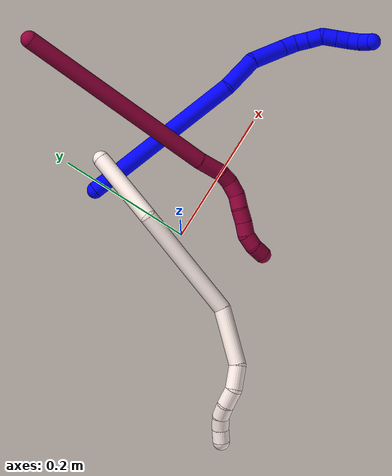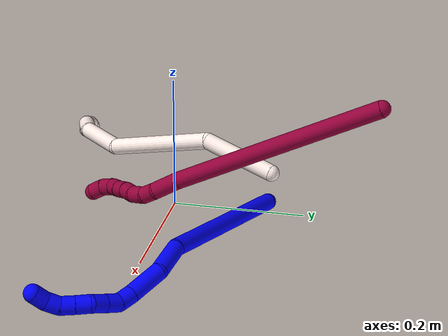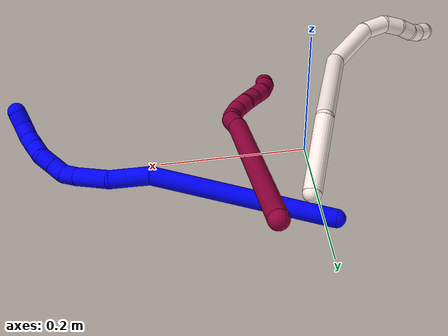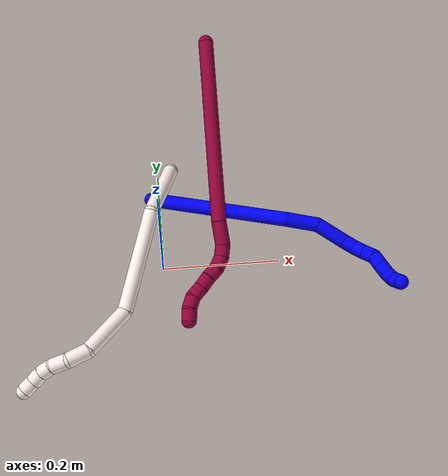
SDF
<sdf version="1.7">
 <world name="default">
  <model name="1">
   <static>0</static>
   <link name="1">
    <collision name="collision-cylinder-e_1_1_4">
     <pose>0.03472 -0.024136 0.116716 0.20392 0.283469 0.029197</pose>
     <geometry><cylinder><radius>0.0125</radius><length>0.248279</length></cylinder></geometry>
     <surface>
      <friction><ode><mu>1.16</mu><mu2>1.16</mu2><slip1>0</slip1><slip2>0</slip2></ode></friction>
      <contact><ode><kp>1e+06</kp><kd>1</kd><max_vel>0</max_vel><min_depth>0.001</min_depth></ode></contact>
     </surface>
    </collision>
    <visual name="visual-cylinder-e_1_1_4">
     <pose>0.03472 -0.024136 0.116716 0.20392 0.283469 0.029197</pose>
     <geometry><cylinder><radius>0.0125</radius><length>0.248279</length></cylinder></geometry>
     <material><ambient>0 0 1 1</ambient></material>
    </visual>
    <collision name="collision-cylinder-e_2_4_5">
     <pose>0.0783 -0.044589 0.259219 -0.141864 0.327826 -0.023502</pose>
     <geometry><cylinder><radius>0.0125</radius><length>0.055029</length></cylinder></geometry>
     <surface>
      <friction><ode><mu>1.16</mu><mu2>1.16</mu2><slip1>0</slip1><slip2>0</slip2></ode></friction>
      <contact><ode><kp>1e+06</kp><kd>1</kd><max_vel>0</max_vel><min_depth>0.001</min_depth></ode></contact>
     </surface>
    </collision>
    <visual name="visual-cylinder-e_2_4_5">
     <pose>0.0783 -0.044589 0.259219 -0.141864 0.327826 -0.023502</pose>
     <geometry><cylinder><radius>0.0125</radius><length>0.055029</length></cylinder></geometry>
     <material><ambient>0 0 1 1</ambient></material>
    </visual>
    <collision name="collision-cylinder-e_3_5_6">
     <pose>0.104396 -0.040665 0.304889 -0.01211 0.714198 -0.004518</pose>
     <geometry><cylinder><radius>0.0125</radius><length>0.05263</length></cylinder></geometry>
     <surface>
      <friction><ode><mu>1.16</mu><mu2>1.16</mu2><slip1>0</slip1><slip2>0</slip2></ode></friction>
      <contact><ode><kp>1e+06</kp><kd>1</kd><max_vel>0</max_vel><min_depth>0.001</min_depth></ode></contact>
     </surface>
    </collision>
    <visual name="visual-cylinder-e_3_5_6">
     <pose>0.104396 -0.040665 0.304889 -0.01211 0.714198 -0.004518</pose>
     <geometry><cylinder><radius>0.0125</radius><length>0.05263</length></cylinder></geometry>
     <material><ambient>0 0 1 1</ambient></material>
    </visual>
    <collision name="collision-cylinder-e_4_6_7">
     <pose>0.128542 -0.041268 0.333138 0.10044 0.687869 0.036001</pose>
     <geometry><cylinder><radius>0.0125</radius><length>0.021768</length></cylinder></geometry>
     <surface>
      <friction><ode><mu>1.16</mu><mu2>1.16</mu2><slip1>0</slip1><slip2>0</slip2></ode></friction>
      <contact><ode><kp>1e+06</kp><kd>1</kd><max_vel>0</max_vel><min_depth>0.001</min_depth></ode></contact>
     </surface>
    </collision>
    <visual name="visual-cylinder-e_4_6_7">
     <pose>0.128542 -0.041268 0.333138 0.10044 0.687869 0.036001</pose>
     <geometry><cylinder><radius>0.0125</radius><length>0.021768</length></cylinder></geometry>
     <material><ambient>0 0 1 1</ambient></material>
    </visual>
    <collision name="collision-cylinder-e_5_7_8">
     <pose>0.140443 -0.047749 0.348888 0.652082 0.492936 0.169715</pose>
     <geometry><cylinder><radius>0.0125</radius><length>0.021091</length></cylinder></geometry>
     <surface>
      <friction><ode><mu>1.16</mu><mu2>1.16</mu2><slip1>0</slip1><slip2>0</slip2></ode></friction>
      <contact><ode><kp>1e+06</kp><kd>1</kd><max_vel>0</max_vel><min_depth>0.001</min_depth></ode></contact>
     </surface>
    </collision>
    <visual name="visual-cylinder-e_5_7_8">
     <pose>0.140443 -0.047749 0.348888 0.652082 0.492936 0.169715</pose>
     <geometry><cylinder><radius>0.0125</radius><length>0.021091</length></cylinder></geometry>
     <material><ambient>0 0 1 1</ambient></material>
    </visual>
    <collision name="collision-cylinder-e_6_8_9">
     <pose>0.14983 -0.059086 0.363689 0.655253 0.439378 0.151493</pose>
     <geometry><cylinder><radius>0.0125</radius><length>0.020672</length></cylinder></geometry>
     <surface>
      <friction><ode><mu>1.16</mu><mu2>1.16</mu2><slip1>0</slip1><slip2>0</slip2></ode></friction>
      <contact><ode><kp>1e+06</kp><kd>1</kd><max_vel>0</max_vel><min_depth>0.001</min_depth></ode></contact>
     </surface>
    </collision>
    <visual name="visual-cylinder-e_6_8_9">
     <pose>0.14983 -0.059086 0.363689 0.655253 0.439378 0.151493</pose>
     <geometry><cylinder><radius>0.0125</radius><length>0.020672</length></cylinder></geometry>
     <material><ambient>0 0 1 1</ambient></material>
    </visual>
    <collision name="collision-cylinder-e_7_9_10">
     <pose>0.162066 -0.070131 0.375002 0.94096 0.870004 0.464138</pose>
     <geometry><cylinder><radius>0.0125</radius><length>0.020515</length></cylinder></geometry>
     <surface>
      <friction><ode><mu>1.16</mu><mu2>1.16</mu2><slip1>0</slip1><slip2>0</slip2></ode></friction>
      <contact><ode><kp>1e+06</kp><kd>1</kd><max_vel>0</max_vel><min_depth>0.001</min_depth></ode></contact>
     </surface>
    </collision>
    <visual name="visual-cylinder-e_7_9_10">
     <pose>0.162066 -0.070131 0.375002 0.94096 0.870004 0.464138</pose>
     <geometry><cylinder><radius>0.0125</radius><length>0.020515</length></cylinder></geometry>
     <material><ambient>0 0 1 1</ambient></material>
    </visual>
    <collision name="collision-cylinder-e_8_10_11">
     <pose>0.177335 -0.080966 0.382741 0.960041 0.836819 0.455003</pose>
     <geometry><cylinder><radius>0.0125</radius><length>0.020009</length></cylinder></geometry>
     <surface>
      <friction><ode><mu>1.16</mu><mu2>1.16</mu2><slip1>0</slip1><slip2>0</slip2></ode></friction>
      <contact><ode><kp>1e+06</kp><kd>1</kd><max_vel>0</max_vel><min_depth>0.001</min_depth></ode></contact>
     </surface>
    </collision>
    <visual name="visual-cylinder-e_8_10_11">
     <pose>0.177335 -0.080966 0.382741 0.960041 0.836819 0.455003</pose>
     <geometry><cylinder><radius>0.0125</radius><length>0.020009</length></cylinder></geometry>
     <material><ambient>0 0 1 1</ambient></material>
    </visual>
    <collision name="collision-cylinder-e_9_11_12">
     <pose>0.1892 -0.094601 0.390329 1.13983 0.459516 0.29756</pose>
     <geometry><cylinder><radius>0.0125</radius><length>0.020006</length></cylinder></geometry>
     <surface>
      <friction><ode><mu>1.16</mu><mu2>1.16</mu2><slip1>0</slip1><slip2>0</slip2></ode></friction>
      <contact><ode><kp>1e+06</kp><kd>1</kd><max_vel>0</max_vel><min_depth>0.001</min_depth></ode></contact>
     </surface>
    </collision>
    <visual name="visual-cylinder-e_9_11_12">
     <pose>0.1892 -0.094601 0.390329 1.13983 0.459516 0.29756</pose>
     <geometry><cylinder><radius>0.0125</radius><length>0.020006</length></cylinder></geometry>
     <material><ambient>0 0 1 1</ambient></material>
    </visual>
    <collision name="collision-cylinder-e_10_12_2">
     <pose>0.195199 -0.11165 0.398355 1.12262 0.156899 0.098777</pose>
     <geometry><cylinder><radius>0.0125</radius><length>0.020003</length></cylinder></geometry>
     <surface>
      <friction><ode><mu>1.16</mu><mu2>1.16</mu2><slip1>0</slip1><slip2>0</slip2></ode></friction>
      <contact><ode><kp>1e+06</kp><kd>1</kd><max_vel>0</max_vel><min_depth>0.001</min_depth></ode></contact>
     </surface>
    </collision>
    <visual name="visual-cylinder-e_10_12_2">
     <pose>0.195199 -0.11165 0.398355 1.12262 0.156899 0.098777</pose>
     <geometry><cylinder><radius>0.0125</radius><length>0.020003</length></cylinder></geometry>
     <material><ambient>0 0 1 1</ambient></material>
    </visual>
    <collision name="collision-sphere-2">
     <pose>0.196762 -0.120553 0.402635 0 -0 0</pose>
     <geometry><sphere><radius>0.0125</radius></sphere></geometry>
     <surface>
      <friction><ode><mu>1.16</mu><mu2>1.16</mu2><slip1>0</slip1><slip2>0</slip2></ode></friction>
      <contact><ode><kp>1e+06</kp><kd>1</kd><max_vel>0</max_vel><min_depth>0.001</min_depth></ode></contact>
     </surface>
    </collision>
    <visual name="visual-sphere-2">
     <pose>0.196762 -0.120553 0.402635 0 -0 0</pose>
     <geometry><sphere><radius>0.0125</radius></sphere></geometry>
     <material><ambient>0 0 1 1</ambient></material>
    </visual>
    <collision name="collision-sphere-12">
     <pose>0.193636 -0.102747 0.394074 0 -0 0</pose>
     <geometry><sphere><radius>0.0125</radius></sphere></geometry>
     <surface>
      <friction><ode><mu>1.16</mu><mu2>1.16</mu2><slip1>0</slip1><slip2>0</slip2></ode></friction>
      <contact><ode><kp>1e+06</kp><kd>1</kd><max_vel>0</max_vel><min_depth>0.001</min_depth></ode></contact>
     </surface>
    </collision>
    <visual name="visual-sphere-12">
     <pose>0.193636 -0.102747 0.394074 0 -0 0</pose>
     <geometry><sphere><radius>0.0125</radius></sphere></geometry>
     <material><ambient>0 0 1 1</ambient></material>
    </visual>
    <collision name="collision-sphere-11">
     <pose>0.184763 -0.086456 0.386584 0 -0 0</pose>
     <geometry><sphere><radius>0.0125</radius></sphere></geometry>
     <surface>
      <friction><ode><mu>1.16</mu><mu2>1.16</mu2><slip1>0</slip1><slip2>0</slip2></ode></friction>
      <contact><ode><kp>1e+06</kp><kd>1</kd><max_vel>0</max_vel><min_depth>0.001</min_depth></ode></contact>
     </surface>
    </collision>
    <visual name="visual-sphere-11">
     <pose>0.184763 -0.086456 0.386584 0 -0 0</pose>
     <geometry><sphere><radius>0.0125</radius></sphere></geometry>
     <material><ambient>0 0 1 1</ambient></material>
    </visual>
    <collision name="collision-sphere-10">
     <pose>0.169906 -0.075476 0.378898 0 -0 0</pose>
     <geometry><sphere><radius>0.0125</radius></sphere></geometry>
     <surface>
      <friction><ode><mu>1.16</mu><mu2>1.16</mu2><slip1>0</slip1><slip2>0</slip2></ode></friction>
      <contact><ode><kp>1e+06</kp><kd>1</kd><max_vel>0</max_vel><min_depth>0.001</min_depth></ode></contact>
     </surface>
    </collision>
    <visual name="visual-sphere-10">
     <pose>0.169906 -0.075476 0.378898 0 -0 0</pose>
     <geometry><sphere><radius>0.0125</radius></sphere></geometry>
     <material><ambient>0 0 1 1</ambient></material>
    </visual>
    <collision name="collision-sphere-9">
     <pose>0.154226 -0.064786 0.371106 0 -0 0</pose>
     <geometry><sphere><radius>0.0125</radius></sphere></geometry>
     <surface>
      <friction><ode><mu>1.16</mu><mu2>1.16</mu2><slip1>0</slip1><slip2>0</slip2></ode></friction>
      <contact><ode><kp>1e+06</kp><kd>1</kd><max_vel>0</max_vel><min_depth>0.001</min_depth></ode></contact>
     </surface>
    </collision>
    <visual name="visual-sphere-9">
     <pose>0.154226 -0.064786 0.371106 0 -0 0</pose>
     <geometry><sphere><radius>0.0125</radius></sphere></geometry>
     <material><ambient>0 0 1 1</ambient></material>
    </visual>
    <collision name="collision-sphere-4">
     <pose>0.069441 -0.048272 0.233431 0 -0 0</pose>
     <geometry><sphere><radius>0.0125</radius></sphere></geometry>
     <surface>
      <friction><ode><mu>1.16</mu><mu2>1.16</mu2><slip1>0</slip1><slip2>0</slip2></ode></friction>
      <contact><ode><kp>1e+06</kp><kd>1</kd><max_vel>0</max_vel><min_depth>0.001</min_depth></ode></contact>
     </surface>
    </collision>
    <visual name="visual-sphere-4">
     <pose>0.069441 -0.048272 0.233431 0 -0 0</pose>
     <geometry><sphere><radius>0.0125</radius></sphere></geometry>
     <material><ambient>0 0 1 1</ambient></material>
    </visual>
    <collision name="collision-sphere-1">
     <geometry><sphere><radius>0.0125</radius></sphere></geometry>
     <surface>
      <friction><ode><mu>1.16</mu><mu2>1.16</mu2><slip1>0</slip1><slip2>0</slip2></ode></friction>
      <contact><ode><kp>1e+06</kp><kd>1</kd><max_vel>0</max_vel><min_depth>0.001</min_depth></ode></contact>
     </surface>
    </collision>
    <visual name="visual-sphere-1">
     <geometry><sphere><radius>0.0125</radius></sphere></geometry>
     <material><ambient>0 0 1 1</ambient></material>
    </visual>
    <collision name="collision-sphere-8">
     <pose>0.145433 -0.053386 0.356272 0 -0 0</pose>
     <geometry><sphere><radius>0.0125</radius></sphere></geometry>
     <surface>
      <friction><ode><mu>1.16</mu><mu2>1.16</mu2><slip1>0</slip1><slip2>0</slip2></ode></friction>
      <contact><ode><kp>1e+06</kp><kd>1</kd><max_vel>0</max_vel><min_depth>0.001</min_depth></ode></contact>
     </surface>
    </collision>
    <visual name="visual-sphere-8">
     <pose>0.145433 -0.053386 0.356272 0 -0 0</pose>
     <geometry><sphere><radius>0.0125</radius></sphere></geometry>
     <material><ambient>0 0 1 1</ambient></material>
    </visual>
    <collision name="collision-sphere-5">
     <pose>0.087159 -0.040906 0.285006 0 -0 0</pose>
     <geometry><sphere><radius>0.0125</radius></sphere></geometry>
     <surface>
      <friction><ode><mu>1.16</mu><mu2>1.16</mu2><slip1>0</slip1><slip2>0</slip2></ode></friction>
      <contact><ode><kp>1e+06</kp><kd>1</kd><max_vel>0</max_vel><min_depth>0.001</min_depth></ode></contact>
     </surface>
    </collision>
    <visual name="visual-sphere-5">
     <pose>0.087159 -0.040906 0.285006 0 -0 0</pose>
     <geometry><sphere><radius>0.0125</radius></sphere></geometry>
     <material><ambient>0 0 1 1</ambient></material>
    </visual>
    <collision name="collision-sphere-6">
     <pose>0.121632 -0.040425 0.324772 0 -0 0</pose>
     <geometry><sphere><radius>0.0125</radius></sphere></geometry>
     <surface>
      <friction><ode><mu>1.16</mu><mu2>1.16</mu2><slip1>0</slip1><slip2>0</slip2></ode></friction>
      <contact><ode><kp>1e+06</kp><kd>1</kd><max_vel>0</max_vel><min_depth>0.001</min_depth></ode></contact>
     </surface>
    </collision>
    <visual name="visual-sphere-6">
     <pose>0.121632 -0.040425 0.324772 0 -0 0</pose>
     <geometry><sphere><radius>0.0125</radius></sphere></geometry>
     <material><ambient>0 0 1 1</ambient></material>
    </visual>
    <collision name="collision-sphere-7">
     <pose>0.135452 -0.042111 0.341504 0 -0 0</pose>
     <geometry><sphere><radius>0.0125</radius></sphere></geometry>
     <surface>
      <friction><ode><mu>1.16</mu><mu2>1.16</mu2><slip1>0</slip1><slip2>0</slip2></ode></friction>
      <contact><ode><kp>1e+06</kp><kd>1</kd><max_vel>0</max_vel><min_depth>0.001</min_depth></ode></contact>
     </surface>
    </collision>
    <visual name="visual-sphere-7">
     <pose>0.135452 -0.042111 0.341504 0 -0 0</pose>
     <geometry><sphere><radius>0.0125</radius></sphere></geometry>
     <material><ambient>0 0 1 1</ambient></material>
    </visual>
    <inertial>
     <pose>0.083687 -0.041796 0.22509 0 -0 0</pose>
     <mass>0.5</mass>
     <inertia>
      <ixx>0.001321</ixx>
      <ixy>0</ixy>
      <ixz>0</ixz>
      <iyy>0.001326</iyy>
      <iyz>0</iyz>
      <izz>-9.5e-05</izz>
     </inertia>
    </inertial>
   </link>
   <pose>-0.013252 0.142539 0.011487 -1.39127 0.647396 -1.46319</pose>
  </model>
  <model name="8">
   <static>0</static>
   <link name="8">
    <collision name="collision-cylinder-e_1_1_4">
     <pose>-0.014746 -0.154423 -0.032465 1.77801 -0.093178 -0.114761</pose>
     <geometry><cylinder><radius>0.0125</radius><length>0.316972</length></cylinder></geometry>
     <surface>
      <friction><ode><mu>1.16</mu><mu2>1.16</mu2><slip1>0</slip1><slip2>0</slip2></ode></friction>
      <contact><ode><kp>1e+06</kp><kd>1</kd><max_vel>0</max_vel><min_depth>0.001</min_depth></ode></contact>
     </surface>
    </collision>
    <visual name="visual-cylinder-e_1_1_4">
     <pose>-0.014746 -0.154423 -0.032465 1.77801 -0.093178 -0.114761</pose>
     <geometry><cylinder><radius>0.0125</radius><length>0.316972</length></cylinder></geometry>
     <material><ambient>0.584314 0 0.227451 1</ambient></material>
    </visual>
    <collision name="collision-cylinder-e_2_4_5">
     <pose>-0.032327 -0.327154 -0.070778 1.88 -0.146423 -0.200176</pose>
     <geometry><cylinder><radius>0.0125</radius><length>0.038856</length></cylinder></geometry>
     <surface>
      <friction><ode><mu>1.16</mu><mu2>1.16</mu2><slip1>0</slip1><slip2>0</slip2></ode></friction>
      <contact><ode><kp>1e+06</kp><kd>1</kd><max_vel>0</max_vel><min_depth>0.001</min_depth></ode></contact>
     </surface>
    </collision>
    <visual name="visual-cylinder-e_2_4_5">
     <pose>-0.032327 -0.327154 -0.070778 1.88 -0.146423 -0.200176</pose>
     <geometry><cylinder><radius>0.0125</radius><length>0.038856</length></cylinder></geometry>
     <material><ambient>0.584314 0 0.227451 1</ambient></material>
    </visual>
    <collision name="collision-cylinder-e_3_5_6">
     <pose>-0.036987 -0.355576 -0.076935 1.6012 -0.178497 -0.183978</pose>
     <geometry><cylinder><radius>0.0125</radius><length>0.020563</length></cylinder></geometry>
     <surface>
      <friction><ode><mu>1.16</mu><mu2>1.16</mu2><slip1>0</slip1><slip2>0</slip2></ode></friction>
      <contact><ode><kp>1e+06</kp><kd>1</kd><max_vel>0</max_vel><min_depth>0.001</min_depth></ode></contact>
     </surface>
    </collision>
    <visual name="visual-cylinder-e_3_5_6">
     <pose>-0.036987 -0.355576 -0.076935 1.6012 -0.178497 -0.183978</pose>
     <geometry><cylinder><radius>0.0125</radius><length>0.020563</length></cylinder></geometry>
     <material><ambient>0.584314 0 0.227451 1</ambient></material>
    </visual>
    <collision name="collision-cylinder-e_4_6_7">
     <pose>-0.03792 -0.376413 -0.07428 1.30127 0.080053 0.060951</pose>
     <geometry><cylinder><radius>0.0125</radius><length>0.022322</length></cylinder></geometry>
     <surface>
      <friction><ode><mu>1.16</mu><mu2>1.16</mu2><slip1>0</slip1><slip2>0</slip2></ode></friction>
      <contact><ode><kp>1e+06</kp><kd>1</kd><max_vel>0</max_vel><min_depth>0.001</min_depth></ode></contact>
     </surface>
    </collision>
    <visual name="visual-cylinder-e_4_6_7">
     <pose>-0.03792 -0.376413 -0.07428 1.30127 0.080053 0.060951</pose>
     <geometry><cylinder><radius>0.0125</radius><length>0.022322</length></cylinder></geometry>
     <material><ambient>0.584314 0 0.227451 1</ambient></material>
    </visual>
    <collision name="collision-cylinder-e_5_7_8">
     <pose>-0.035546 -0.3954 -0.065791 0.981331 0.147858 0.079095</pose>
     <geometry><cylinder><radius>0.0125</radius><length>0.020101</length></cylinder></geometry>
     <surface>
      <friction><ode><mu>1.16</mu><mu2>1.16</mu2><slip1>0</slip1><slip2>0</slip2></ode></friction>
      <contact><ode><kp>1e+06</kp><kd>1</kd><max_vel>0</max_vel><min_depth>0.001</min_depth></ode></contact>
     </surface>
    </collision>
    <visual name="visual-cylinder-e_5_7_8">
     <pose>-0.035546 -0.3954 -0.065791 0.981331 0.147858 0.079095</pose>
     <geometry><cylinder><radius>0.0125</radius><length>0.020101</length></cylinder></geometry>
     <material><ambient>0.584314 0 0.227451 1</ambient></material>
    </visual>
    <collision name="collision-cylinder-e_6_8_9">
     <pose>-0.034134 -0.412855 -0.055563 1.098 -0.006564 -0.004016</pose>
     <geometry><cylinder><radius>0.0125</radius><length>0.02065</length></cylinder></geometry>
     <surface>
      <friction><ode><mu>1.16</mu><mu2>1.16</mu2><slip1>0</slip1><slip2>0</slip2></ode></friction>
      <contact><ode><kp>1e+06</kp><kd>1</kd><max_vel>0</max_vel><min_depth>0.001</min_depth></ode></contact>
     </surface>
    </collision>
    <visual name="visual-cylinder-e_6_8_9">
     <pose>-0.034134 -0.412855 -0.055563 1.098 -0.006564 -0.004016</pose>
     <geometry><cylinder><radius>0.0125</radius><length>0.02065</length></cylinder></geometry>
     <material><ambient>0.584314 0 0.227451 1</ambient></material>
    </visual>
    <collision name="collision-cylinder-e_7_9_10">
     <pose>-0.033871 -0.430618 -0.045339 0.998445 0.032348 0.01764</pose>
     <geometry><cylinder><radius>0.0125</radius><length>0.020402</length></cylinder></geometry>
     <surface>
      <friction><ode><mu>1.16</mu><mu2>1.16</mu2><slip1>0</slip1><slip2>0</slip2></ode></friction>
      <contact><ode><kp>1e+06</kp><kd>1</kd><max_vel>0</max_vel><min_depth>0.001</min_depth></ode></contact>
     </surface>
    </collision>
    <visual name="visual-cylinder-e_7_9_10">
     <pose>-0.033871 -0.430618 -0.045339 0.998445 0.032348 0.01764</pose>
     <geometry><cylinder><radius>0.0125</radius><length>0.020402</length></cylinder></geometry>
     <material><ambient>0.584314 0 0.227451 1</ambient></material>
    </visual>
    <collision name="collision-cylinder-e_8_10_11">
     <pose>-0.03332 -0.449087 -0.038162 1.40507 0.022056 0.018674</pose>
     <geometry><cylinder><radius>0.0125</radius><length>0.020075</length></cylinder></geometry>
     <surface>
      <friction><ode><mu>1.16</mu><mu2>1.16</mu2><slip1>0</slip1><slip2>0</slip2></ode></friction>
      <contact><ode><kp>1e+06</kp><kd>1</kd><max_vel>0</max_vel><min_depth>0.001</min_depth></ode></contact>
     </surface>
    </collision>
    <visual name="visual-cylinder-e_8_10_11">
     <pose>-0.03332 -0.449087 -0.038162 1.40507 0.022056 0.018674</pose>
     <geometry><cylinder><radius>0.0125</radius><length>0.020075</length></cylinder></geometry>
     <material><ambient>0.584314 0 0.227451 1</ambient></material>
    </visual>
    <collision name="collision-cylinder-e_9_11_2">
     <pose>-0.03506 -0.46876 -0.037592 1.68147 -0.196818 -0.219725</pose>
     <geometry><cylinder><radius>0.0125</radius><length>0.020059</length></cylinder></geometry>
     <surface>
      <friction><ode><mu>1.16</mu><mu2>1.16</mu2><slip1>0</slip1><slip2>0</slip2></ode></friction>
      <contact><ode><kp>1e+06</kp><kd>1</kd><max_vel>0</max_vel><min_depth>0.001</min_depth></ode></contact>
     </surface>
    </collision>
    <visual name="visual-cylinder-e_9_11_2">
     <pose>-0.03506 -0.46876 -0.037592 1.68147 -0.196818 -0.219725</pose>
     <geometry><cylinder><radius>0.0125</radius><length>0.020059</length></cylinder></geometry>
     <material><ambient>0.584314 0 0.227451 1</ambient></material>
    </visual>
    <collision name="collision-sphere-2">
     <pose>-0.037021 -0.478536 -0.038679 0 -0 0</pose>
     <geometry><sphere><radius>0.0125</radius></sphere></geometry>
     <surface>
      <friction><ode><mu>1.16</mu><mu2>1.16</mu2><slip1>0</slip1><slip2>0</slip2></ode></friction>
      <contact><ode><kp>1e+06</kp><kd>1</kd><max_vel>0</max_vel><min_depth>0.001</min_depth></ode></contact>
     </surface>
    </collision>
    <visual name="visual-sphere-2">
     <pose>-0.037021 -0.478536 -0.038679 0 -0 0</pose>
     <geometry><sphere><radius>0.0125</radius></sphere></geometry>
     <material><ambient>0.584314 0 0.227451 1</ambient></material>
    </visual>
    <collision name="collision-sphere-11">
     <pose>-0.033099 -0.458984 -0.036506 0 -0 0</pose>
     <geometry><sphere><radius>0.0125</radius></sphere></geometry>
     <surface>
      <friction><ode><mu>1.16</mu><mu2>1.16</mu2><slip1>0</slip1><slip2>0</slip2></ode></friction>
      <contact><ode><kp>1e+06</kp><kd>1</kd><max_vel>0</max_vel><min_depth>0.001</min_depth></ode></contact>
     </surface>
    </collision>
    <visual name="visual-sphere-11">
     <pose>-0.033099 -0.458984 -0.036506 0 -0 0</pose>
     <geometry><sphere><radius>0.0125</radius></sphere></geometry>
     <material><ambient>0.584314 0 0.227451 1</ambient></material>
    </visual>
    <collision name="collision-sphere-10">
     <pose>-0.033541 -0.439189 -0.039817 0 -0 0</pose>
     <geometry><sphere><radius>0.0125</radius></sphere></geometry>
     <surface>
      <friction><ode><mu>1.16</mu><mu2>1.16</mu2><slip1>0</slip1><slip2>0</slip2></ode></friction>
      <contact><ode><kp>1e+06</kp><kd>1</kd><max_vel>0</max_vel><min_depth>0.001</min_depth></ode></contact>
     </surface>
    </collision>
    <visual name="visual-sphere-10">
     <pose>-0.033541 -0.439189 -0.039817 0 -0 0</pose>
     <geometry><sphere><radius>0.0125</radius></sphere></geometry>
     <material><ambient>0.584314 0 0.227451 1</ambient></material>
    </visual>
    <collision name="collision-sphere-9">
     <pose>-0.034201 -0.422048 -0.050861 0 -0 0</pose>
     <geometry><sphere><radius>0.0125</radius></sphere></geometry>
     <surface>
      <friction><ode><mu>1.16</mu><mu2>1.16</mu2><slip1>0</slip1><slip2>0</slip2></ode></friction>
      <contact><ode><kp>1e+06</kp><kd>1</kd><max_vel>0</max_vel><min_depth>0.001</min_depth></ode></contact>
     </surface>
    </collision>
    <visual name="visual-sphere-9">
     <pose>-0.034201 -0.422048 -0.050861 0 -0 0</pose>
     <geometry><sphere><radius>0.0125</radius></sphere></geometry>
     <material><ambient>0.584314 0 0.227451 1</ambient></material>
    </visual>
    <collision name="collision-sphere-4">
     <pose>-0.029492 -0.308845 -0.06493 0 -0 0</pose>
     <geometry><sphere><radius>0.0125</radius></sphere></geometry>
     <surface>
      <friction><ode><mu>1.16</mu><mu2>1.16</mu2><slip1>0</slip1><slip2>0</slip2></ode></friction>
      <contact><ode><kp>1e+06</kp><kd>1</kd><max_vel>0</max_vel><min_depth>0.001</min_depth></ode></contact>
     </surface>
    </collision>
    <visual name="visual-sphere-4">
     <pose>-0.029492 -0.308845 -0.06493 0 -0 0</pose>
     <geometry><sphere><radius>0.0125</radius></sphere></geometry>
     <material><ambient>0.584314 0 0.227451 1</ambient></material>
    </visual>
    <collision name="collision-sphere-1">
     <geometry><sphere><radius>0.0125</radius></sphere></geometry>
     <surface>
      <friction><ode><mu>1.16</mu><mu2>1.16</mu2><slip1>0</slip1><slip2>0</slip2></ode></friction>
      <contact><ode><kp>1e+06</kp><kd>1</kd><max_vel>0</max_vel><min_depth>0.001</min_depth></ode></contact>
     </surface>
    </collision>
    <visual name="visual-sphere-1">
     <geometry><sphere><radius>0.0125</radius></sphere></geometry>
     <material><ambient>0.584314 0 0.227451 1</ambient></material>
    </visual>
    <collision name="collision-sphere-8">
     <pose>-0.034066 -0.403663 -0.060265 0 -0 0</pose>
     <geometry><sphere><radius>0.0125</radius></sphere></geometry>
     <surface>
      <friction><ode><mu>1.16</mu><mu2>1.16</mu2><slip1>0</slip1><slip2>0</slip2></ode></friction>
      <contact><ode><kp>1e+06</kp><kd>1</kd><max_vel>0</max_vel><min_depth>0.001</min_depth></ode></contact>
     </surface>
    </collision>
    <visual name="visual-sphere-8">
     <pose>-0.034066 -0.403663 -0.060265 0 -0 0</pose>
     <geometry><sphere><radius>0.0125</radius></sphere></geometry>
     <material><ambient>0.584314 0 0.227451 1</ambient></material>
    </visual>
    <collision name="collision-sphere-5">
     <pose>-0.035161 -0.345462 -0.076627 0 -0 0</pose>
     <geometry><sphere><radius>0.0125</radius></sphere></geometry>
     <surface>
      <friction><ode><mu>1.16</mu><mu2>1.16</mu2><slip1>0</slip1><slip2>0</slip2></ode></friction>
      <contact><ode><kp>1e+06</kp><kd>1</kd><max_vel>0</max_vel><min_depth>0.001</min_depth></ode></contact>
     </surface>
    </collision>
    <visual name="visual-sphere-5">
     <pose>-0.035161 -0.345462 -0.076627 0 -0 0</pose>
     <geometry><sphere><radius>0.0125</radius></sphere></geometry>
     <material><ambient>0.584314 0 0.227451 1</ambient></material>
    </visual>
    <collision name="collision-sphere-6">
     <pose>-0.038812 -0.365689 -0.077242 0 -0 0</pose>
     <geometry><sphere><radius>0.0125</radius></sphere></geometry>
     <surface>
      <friction><ode><mu>1.16</mu><mu2>1.16</mu2><slip1>0</slip1><slip2>0</slip2></ode></friction>
      <contact><ode><kp>1e+06</kp><kd>1</kd><max_vel>0</max_vel><min_depth>0.001</min_depth></ode></contact>
     </surface>
    </collision>
    <visual name="visual-sphere-6">
     <pose>-0.038812 -0.365689 -0.077242 0 -0 0</pose>
     <geometry><sphere><radius>0.0125</radius></sphere></geometry>
     <material><ambient>0.584314 0 0.227451 1</ambient></material>
    </visual>
    <collision name="collision-sphere-7">
     <pose>-0.037027 -0.387136 -0.071318 0 -0 0</pose>
     <geometry><sphere><radius>0.0125</radius></sphere></geometry>
     <surface>
      <friction><ode><mu>1.16</mu><mu2>1.16</mu2><slip1>0</slip1><slip2>0</slip2></ode></friction>
      <contact><ode><kp>1e+06</kp><kd>1</kd><max_vel>0</max_vel><min_depth>0.001</min_depth></ode></contact>
     </surface>
    </collision>
    <visual name="visual-sphere-7">
     <pose>-0.037027 -0.387136 -0.071318 0 -0 0</pose>
     <geometry><sphere><radius>0.0125</radius></sphere></geometry>
     <material><ambient>0.584314 0 0.227451 1</ambient></material>
    </visual>
    <inertial>
     <pose>-0.022039 -0.242102 -0.042392 0 -0 0</pose>
     <mass>0.5</mass>
     <inertia>
      <ixx>0.002346</ixx>
      <ixy>0</ixy>
      <ixz>0</ixz>
      <iyy>-0.000859</iyy>
      <iyz>0</iyz>
      <izz>0.00286</izz>
     </inertia>
    </inertial>
   </link>
   <pose>0.100683 0.316773 0.221293 1.29264 -1.21912 -1.50063</pose>
  </model>
  <model name="11">
   <static>0</static>
   <link name="11">
    <collision name="collision-cylinder-e_1_1_4">
     <pose>-0.037502 -0.042724 -0.003248 1.64667 -0.718969 -0.770425</pose>
     <geometry><cylinder><radius>0.0125</radius><length>0.113883</length></cylinder></geometry>
     <surface>
      <friction><ode><mu>1.16</mu><mu2>1.16</mu2><slip1>0</slip1><slip2>0</slip2></ode></friction>
      <contact><ode><kp>1e+06</kp><kd>1</kd><max_vel>0</max_vel><min_depth>0.001</min_depth></ode></contact>
     </surface>
    </collision>
    <visual name="visual-cylinder-e_1_1_4">
     <pose>-0.037502 -0.042724 -0.003248 1.64667 -0.718969 -0.770425</pose>
     <geometry><cylinder><radius>0.0125</radius><length>0.113883</length></cylinder></geometry>
     <material><ambient>1 0.933333 0.909804 1</ambient></material>
    </visual>
    <collision name="collision-cylinder-e_2_4_5">
     <pose>-0.114415 -0.155318 0.027817 1.11429 -0.468677 -0.295276</pose>
     <geometry><cylinder><radius>0.0125</radius><length>0.174498</length></cylinder></geometry>
     <surface>
      <friction><ode><mu>1.16</mu><mu2>1.16</mu2><slip1>0</slip1><slip2>0</slip2></ode></friction>
      <contact><ode><kp>1e+06</kp><kd>1</kd><max_vel>0</max_vel><min_depth>0.001</min_depth></ode></contact>
     </surface>
    </collision>
    <visual name="visual-cylinder-e_2_4_5">
     <pose>-0.114415 -0.155318 0.027817 1.11429 -0.468677 -0.295276</pose>
     <geometry><cylinder><radius>0.0125</radius><length>0.174498</length></cylinder></geometry>
     <material><ambient>1 0.933333 0.909804 1</ambient></material>
    </visual>
    <collision name="collision-cylinder-e_3_5_6">
     <pose>-0.164365 -0.266674 0.061451 1.58717 -0.248736 -0.252798</pose>
     <geometry><cylinder><radius>0.0125</radius><length>0.085619</length></cylinder></geometry>
     <surface>
      <friction><ode><mu>1.16</mu><mu2>1.16</mu2><slip1>0</slip1><slip2>0</slip2></ode></friction>
      <contact><ode><kp>1e+06</kp><kd>1</kd><max_vel>0</max_vel><min_depth>0.001</min_depth></ode></contact>
     </surface>
    </collision>
    <visual name="visual-cylinder-e_3_5_6">
     <pose>-0.164365 -0.266674 0.061451 1.58717 -0.248736 -0.252798</pose>
     <geometry><cylinder><radius>0.0125</radius><length>0.085619</length></cylinder></geometry>
     <material><ambient>1 0.933333 0.909804 1</ambient></material>
    </visual>
    <collision name="collision-cylinder-e_4_6_7">
     <pose>-0.172045 -0.325704 0.057999 1.72757 0.159577 0.186636</pose>
     <geometry><cylinder><radius>0.0125</radius><length>0.03598</length></cylinder></geometry>
     <surface>
      <friction><ode><mu>1.16</mu><mu2>1.16</mu2><slip1>0</slip1><slip2>0</slip2></ode></friction>
      <contact><ode><kp>1e+06</kp><kd>1</kd><max_vel>0</max_vel><min_depth>0.001</min_depth></ode></contact>
     </surface>
    </collision>
    <visual name="visual-cylinder-e_4_6_7">
     <pose>-0.172045 -0.325704 0.057999 1.72757 0.159577 0.186636</pose>
     <geometry><cylinder><radius>0.0125</radius><length>0.03598</length></cylinder></geometry>
     <material><ambient>1 0.933333 0.909804 1</ambient></material>
    </visual>
    <collision name="collision-cylinder-e_5_7_8">
     <pose>-0.161677 -0.354746 0.055953 1.50767 0.577669 0.544077</pose>
     <geometry><cylinder><radius>0.0125</radius><length>0.027506</length></cylinder></geometry>
     <surface>
      <friction><ode><mu>1.16</mu><mu2>1.16</mu2><slip1>0</slip1><slip2>0</slip2></ode></friction>
      <contact><ode><kp>1e+06</kp><kd>1</kd><max_vel>0</max_vel><min_depth>0.001</min_depth></ode></contact>
     </surface>
    </collision>
    <visual name="visual-cylinder-e_5_7_8">
     <pose>-0.161677 -0.354746 0.055953 1.50767 0.577669 0.544077</pose>
     <geometry><cylinder><radius>0.0125</radius><length>0.027506</length></cylinder></geometry>
     <material><ambient>1 0.933333 0.909804 1</ambient></material>
    </visual>
    <collision name="collision-cylinder-e_6_8_9">
     <pose>-0.148239 -0.375085 0.059844 1.22704 0.563117 0.401856</pose>
     <geometry><cylinder><radius>0.0125</radius><length>0.022208</length></cylinder></geometry>
     <surface>
      <friction><ode><mu>1.16</mu><mu2>1.16</mu2><slip1>0</slip1><slip2>0</slip2></ode></friction>
      <contact><ode><kp>1e+06</kp><kd>1</kd><max_vel>0</max_vel><min_depth>0.001</min_depth></ode></contact>
     </surface>
    </collision>
    <visual name="visual-cylinder-e_6_8_9">
     <pose>-0.148239 -0.375085 0.059844 1.22704 0.563117 0.401856</pose>
     <geometry><cylinder><radius>0.0125</radius><length>0.022208</length></cylinder></geometry>
     <material><ambient>1 0.933333 0.909804 1</ambient></material>
    </visual>
    <collision name="collision-cylinder-e_7_9_10">
     <pose>-0.140012 -0.393101 0.066556 1.20192 0.229624 0.157786</pose>
     <geometry><cylinder><radius>0.0125</radius><length>0.020207</length></cylinder></geometry>
     <surface>
      <friction><ode><mu>1.16</mu><mu2>1.16</mu2><slip1>0</slip1><slip2>0</slip2></ode></friction>
      <contact><ode><kp>1e+06</kp><kd>1</kd><max_vel>0</max_vel><min_depth>0.001</min_depth></ode></contact>
     </surface>
    </collision>
    <visual name="visual-cylinder-e_7_9_10">
     <pose>-0.140012 -0.393101 0.066556 1.20192 0.229624 0.157786</pose>
     <geometry><cylinder><radius>0.0125</radius><length>0.020207</length></cylinder></geometry>
     <material><ambient>1 0.933333 0.909804 1</ambient></material>
    </visual>
    <collision name="collision-cylinder-e_8_10_2">
     <pose>-0.136839 -0.412034 0.072352 1.34433 0.086935 0.069198</pose>
     <geometry><cylinder><radius>0.0125</radius><length>0.0201</length></cylinder></geometry>
     <surface>
      <friction><ode><mu>1.16</mu><mu2>1.16</mu2><slip1>0</slip1><slip2>0</slip2></ode></friction>
      <contact><ode><kp>1e+06</kp><kd>1</kd><max_vel>0</max_vel><min_depth>0.001</min_depth></ode></contact>
     </surface>
    </collision>
    <visual name="visual-cylinder-e_8_10_2">
     <pose>-0.136839 -0.412034 0.072352 1.34433 0.086935 0.069198</pose>
     <geometry><cylinder><radius>0.0125</radius><length>0.0201</length></cylinder></geometry>
     <material><ambient>1 0.933333 0.909804 1</ambient></material>
    </visual>
    <collision name="collision-sphere-2">
     <pose>-0.135967 -0.42179 0.074599 0 -0 0</pose>
     <geometry><sphere><radius>0.0125</radius></sphere></geometry>
     <surface>
      <friction><ode><mu>1.16</mu><mu2>1.16</mu2><slip1>0</slip1><slip2>0</slip2></ode></friction>
      <contact><ode><kp>1e+06</kp><kd>1</kd><max_vel>0</max_vel><min_depth>0.001</min_depth></ode></contact>
     </surface>
    </collision>
    <visual name="visual-sphere-2">
     <pose>-0.135967 -0.42179 0.074599 0 -0 0</pose>
     <geometry><sphere><radius>0.0125</radius></sphere></geometry>
     <material><ambient>1 0.933333 0.909804 1</ambient></material>
    </visual>
    <collision name="collision-sphere-10">
     <pose>-0.137712 -0.402278 0.070104 0 -0 0</pose>
     <geometry><sphere><radius>0.0125</radius></sphere></geometry>
     <surface>
      <friction><ode><mu>1.16</mu><mu2>1.16</mu2><slip1>0</slip1><slip2>0</slip2></ode></friction>
      <contact><ode><kp>1e+06</kp><kd>1</kd><max_vel>0</max_vel><min_depth>0.001</min_depth></ode></contact>
     </surface>
    </collision>
    <visual name="visual-sphere-10">
     <pose>-0.137712 -0.402278 0.070104 0 -0 0</pose>
     <geometry><sphere><radius>0.0125</radius></sphere></geometry>
     <material><ambient>1 0.933333 0.909804 1</ambient></material>
    </visual>
    <collision name="collision-sphere-9">
     <pose>-0.142311 -0.383925 0.063009 0 -0 0</pose>
     <geometry><sphere><radius>0.0125</radius></sphere></geometry>
     <surface>
      <friction><ode><mu>1.16</mu><mu2>1.16</mu2><slip1>0</slip1><slip2>0</slip2></ode></friction>
      <contact><ode><kp>1e+06</kp><kd>1</kd><max_vel>0</max_vel><min_depth>0.001</min_depth></ode></contact>
     </surface>
    </collision>
    <visual name="visual-sphere-9">
     <pose>-0.142311 -0.383925 0.063009 0 -0 0</pose>
     <geometry><sphere><radius>0.0125</radius></sphere></geometry>
     <material><ambient>1 0.933333 0.909804 1</ambient></material>
    </visual>
    <collision name="collision-sphere-4">
     <pose>-0.075004 -0.085449 -0.006496 0 -0 0</pose>
     <geometry><sphere><radius>0.0125</radius></sphere></geometry>
     <surface>
      <friction><ode><mu>1.16</mu><mu2>1.16</mu2><slip1>0</slip1><slip2>0</slip2></ode></friction>
      <contact><ode><kp>1e+06</kp><kd>1</kd><max_vel>0</max_vel><min_depth>0.001</min_depth></ode></contact>
     </surface>
    </collision>
    <visual name="visual-sphere-4">
     <pose>-0.075004 -0.085449 -0.006496 0 -0 0</pose>
     <geometry><sphere><radius>0.0125</radius></sphere></geometry>
     <material><ambient>1 0.933333 0.909804 1</ambient></material>
    </visual>
    <collision name="collision-sphere-1">
     <geometry><sphere><radius>0.0125</radius></sphere></geometry>
     <surface>
      <friction><ode><mu>1.16</mu><mu2>1.16</mu2><slip1>0</slip1><slip2>0</slip2></ode></friction>
      <contact><ode><kp>1e+06</kp><kd>1</kd><max_vel>0</max_vel><min_depth>0.001</min_depth></ode></contact>
     </surface>
    </collision>
    <visual name="visual-sphere-1">
     <geometry><sphere><radius>0.0125</radius></sphere></geometry>
     <material><ambient>1 0.933333 0.909804 1</ambient></material>
    </visual>
    <collision name="collision-sphere-8">
     <pose>-0.154166 -0.366245 0.05668 0 -0 0</pose>
     <geometry><sphere><radius>0.0125</radius></sphere></geometry>
     <surface>
      <friction><ode><mu>1.16</mu><mu2>1.16</mu2><slip1>0</slip1><slip2>0</slip2></ode></friction>
      <contact><ode><kp>1e+06</kp><kd>1</kd><max_vel>0</max_vel><min_depth>0.001</min_depth></ode></contact>
     </surface>
    </collision>
    <visual name="visual-sphere-8">
     <pose>-0.154166 -0.366245 0.05668 0 -0 0</pose>
     <geometry><sphere><radius>0.0125</radius></sphere></geometry>
     <material><ambient>1 0.933333 0.909804 1</ambient></material>
    </visual>
    <collision name="collision-sphere-5">
     <pose>-0.153826 -0.225188 0.062131 0 -0 0</pose>
     <geometry><sphere><radius>0.0125</radius></sphere></geometry>
     <surface>
      <friction><ode><mu>1.16</mu><mu2>1.16</mu2><slip1>0</slip1><slip2>0</slip2></ode></friction>
      <contact><ode><kp>1e+06</kp><kd>1</kd><max_vel>0</max_vel><min_depth>0.001</min_depth></ode></contact>
     </surface>
    </collision>
    <visual name="visual-sphere-5">
     <pose>-0.153826 -0.225188 0.062131 0 -0 0</pose>
     <geometry><sphere><radius>0.0125</radius></sphere></geometry>
     <material><ambient>1 0.933333 0.909804 1</ambient></material>
    </visual>
    <collision name="collision-sphere-6">
     <pose>-0.174904 -0.308161 0.060772 0 -0 0</pose>
     <geometry><sphere><radius>0.0125</radius></sphere></geometry>
     <surface>
      <friction><ode><mu>1.16</mu><mu2>1.16</mu2><slip1>0</slip1><slip2>0</slip2></ode></friction>
      <contact><ode><kp>1e+06</kp><kd>1</kd><max_vel>0</max_vel><min_depth>0.001</min_depth></ode></contact>
     </surface>
    </collision>
    <visual name="visual-sphere-6">
     <pose>-0.174904 -0.308161 0.060772 0 -0 0</pose>
     <geometry><sphere><radius>0.0125</radius></sphere></geometry>
     <material><ambient>1 0.933333 0.909804 1</ambient></material>
    </visual>
    <collision name="collision-sphere-7">
     <pose>-0.169187 -0.343248 0.055226 0 -0 0</pose>
     <geometry><sphere><radius>0.0125</radius></sphere></geometry>
     <surface>
      <friction><ode><mu>1.16</mu><mu2>1.16</mu2><slip1>0</slip1><slip2>0</slip2></ode></friction>
      <contact><ode><kp>1e+06</kp><kd>1</kd><max_vel>0</max_vel><min_depth>0.001</min_depth></ode></contact>
     </surface>
    </collision>
    <visual name="visual-sphere-7">
     <pose>-0.169187 -0.343248 0.055226 0 -0 0</pose>
     <geometry><sphere><radius>0.0125</radius></sphere></geometry>
     <material><ambient>1 0.933333 0.909804 1</ambient></material>
    </visual>
    <inertial>
     <pose>-0.115636 -0.201664 0.034999 0 -0 0</pose>
     <mass>0.5</mass>
     <inertia>
      <ixx>0.000312</ixx>
      <ixy>0</ixy>
      <ixz>0</ixz>
      <iyy>7.2e-05</iyy>
      <iyz>0</iyz>
      <izz>0.000824</izz>
     </inertia>
    </inertial>
   </link>
   <pose>0.024175 0.153172 0.076796 2.98819 0.450339 2.11638</pose>
  </model>
 </world>
</sdf>
